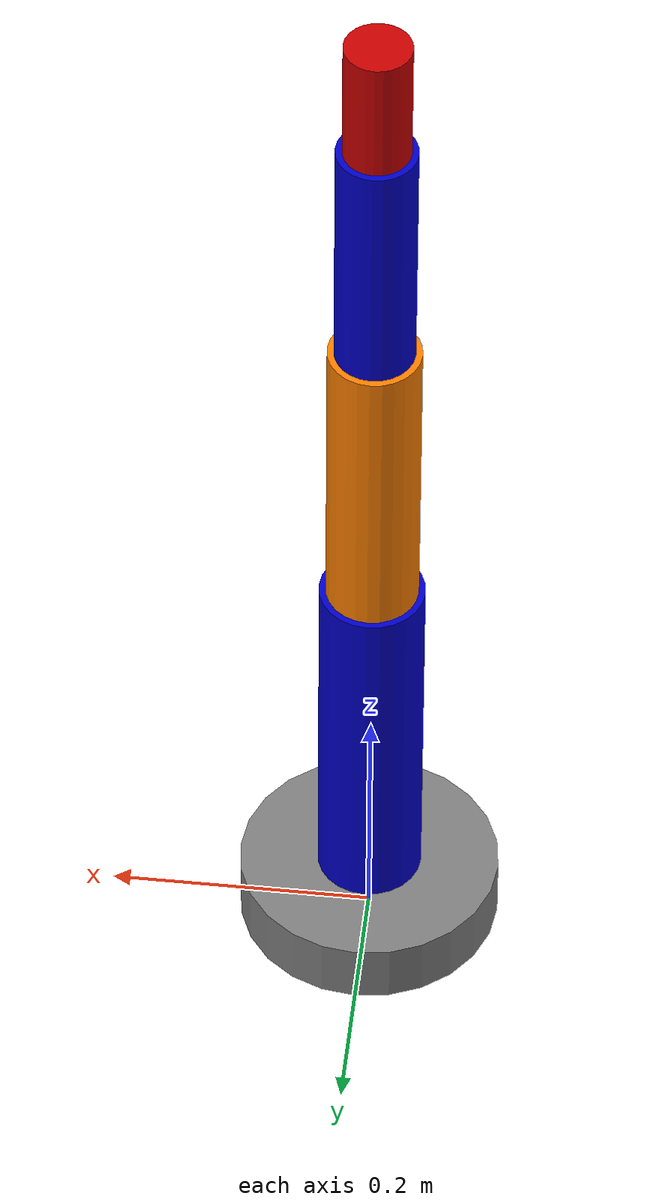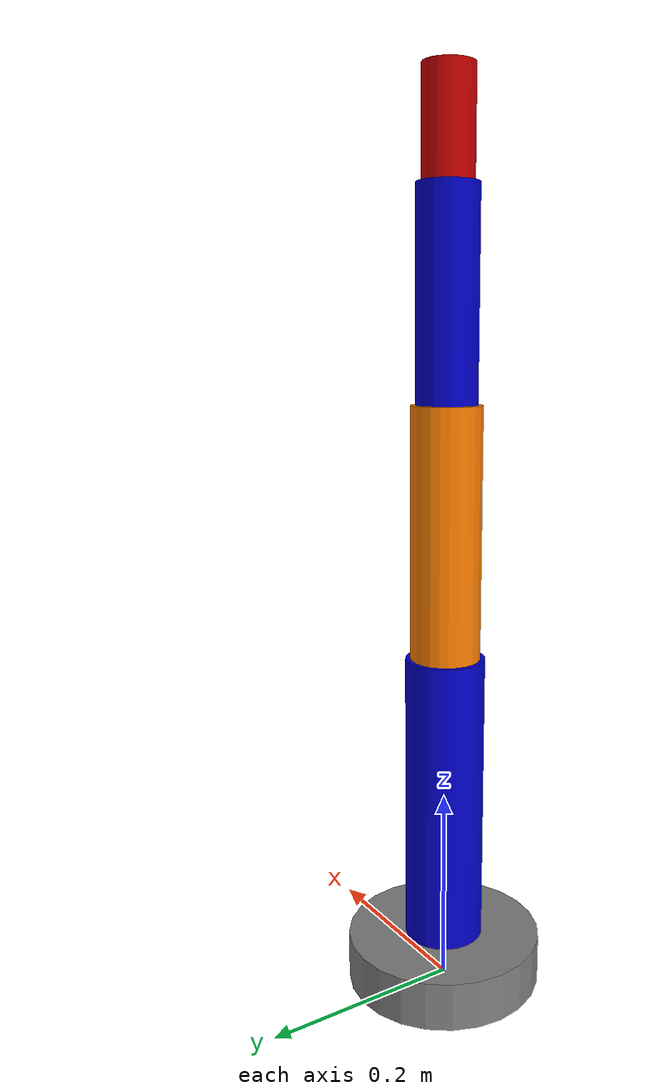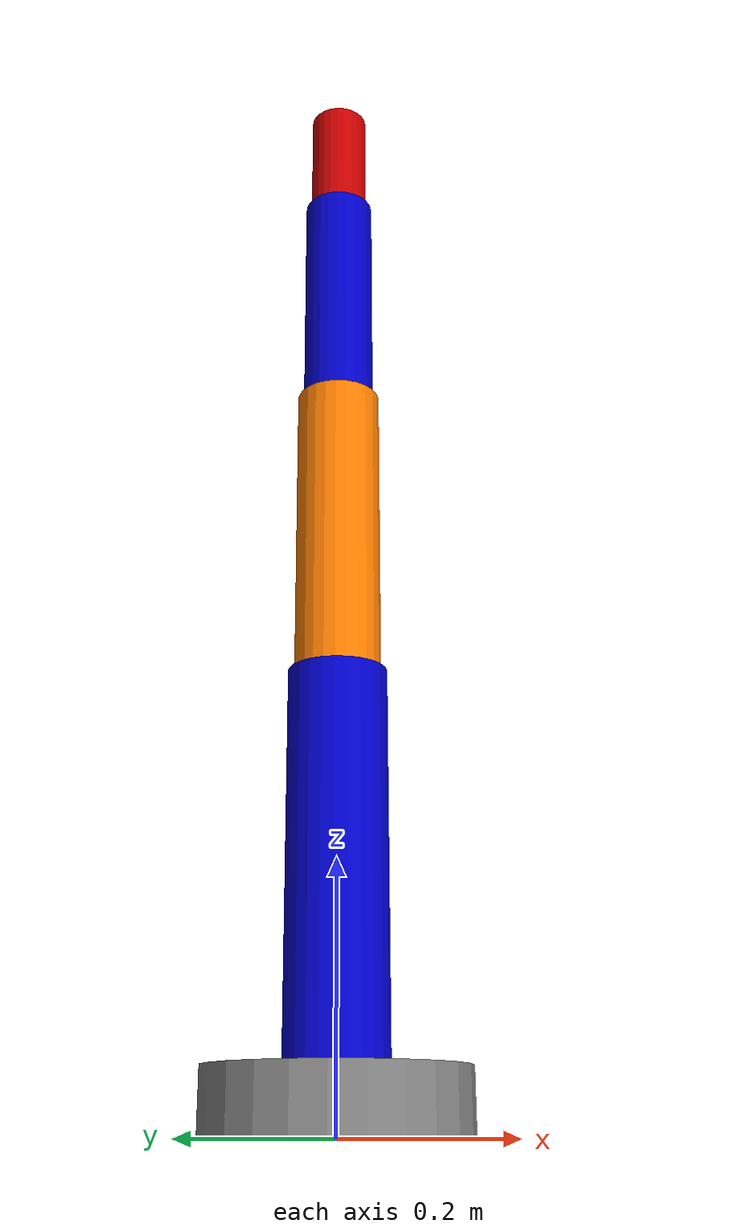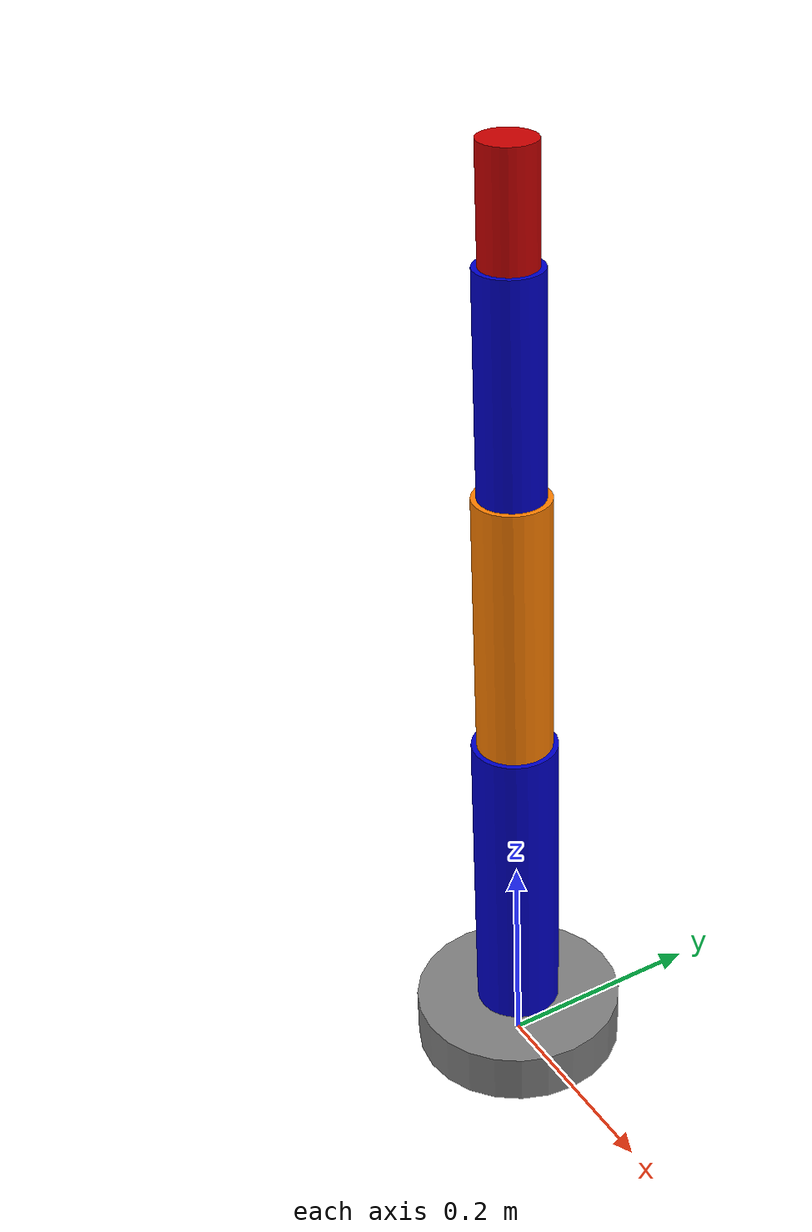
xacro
<?xml version="1.0"?>
<robot xmlns:xacro="http://www.ros.org/wiki/xacro" name="robot_arm">

  <!-- Constants for robot dimensions -->
  <xacro:property name="PI" value="3.1415926535897931"/>

  <!-- Base dimensions -->
  <xacro:property name="base_height" value="0.05"/>
  <xacro:property name="base_radius" value="0.1"/>

  <!-- Link 1 dimensions -->
  <xacro:property name="link1_length" value="0.3"/>
  <xacro:property name="link1_radius" value="0.04"/>

  <!-- Link 2 dimensions -->
  <xacro:property name="link2_length" value="0.25"/>
  <xacro:property name="link2_radius" value="0.035"/>

  <!-- Link 3 dimensions -->
  <xacro:property name="link3_length" value="0.2"/>
  <xacro:property name="link3_radius" value="0.03"/>

  <!-- End effector dimensions -->
  <xacro:property name="ee_length" value="0.1"/>
  <xacro:property name="ee_radius" value="0.025"/>

  <!-- Material colors -->
  <material name="blue">
    <color rgba="0 0 0.8 1"/>
  </material>

  <material name="gray">
    <color rgba="0.5 0.5 0.5 1"/>
  </material>

  <material name="orange">
    <color rgba="1 0.5 0 1"/>
  </material>

  <material name="red">
    <color rgba="0.8 0 0 1"/>
  </material>

  <!-- World link (fixed reference frame) -->
  <link name="world"/>

  <!-- Base link -->
  <link name="base_link">
    <visual>
      <origin xyz="0 0 ${base_height/2}" rpy="0 0 0"/>
      <geometry>
        <cylinder radius="${base_radius}" length="${base_height}"/>
      </geometry>
      <material name="gray"/>
    </visual>
    <collision>
      <origin xyz="0 0 ${base_height/2}" rpy="0 0 0"/>
      <geometry>
        <cylinder radius="${base_radius}" length="${base_height}"/>
      </geometry>
    </collision>
    <inertial>
      <mass value="1.0"/>
      <origin xyz="0 0 ${base_height/2}" rpy="0 0 0"/>
      <inertia ixx="0.01" ixy="0.0" ixz="0.0" iyy="0.01" iyz="0.0" izz="0.01"/>
    </inertial>
  </link>

  <!-- Joint connecting world to base -->
  <joint name="world_to_base" type="fixed">
    <parent link="world"/>
    <child link="base_link"/>
    <origin xyz="0 0 0" rpy="0 0 0"/>
  </joint>

  <!-- Link 1 -->
  <link name="link1">
    <visual>
      <origin xyz="0 0 ${link1_length/2}" rpy="0 0 0"/>
      <geometry>
        <cylinder radius="${link1_radius}" length="${link1_length}"/>
      </geometry>
      <material name="blue"/>
    </visual>
    <collision>
      <origin xyz="0 0 ${link1_length/2}" rpy="0 0 0"/>
      <geometry>
        <cylinder radius="${link1_radius}" length="${link1_length}"/>
      </geometry>
    </collision>
    <inertial>
      <mass value="0.5"/>
      <origin xyz="0 0 ${link1_length/2}" rpy="0 0 0"/>
      <inertia ixx="0.005" ixy="0.0" ixz="0.0" iyy="0.005" iyz="0.0" izz="0.001"/>
    </inertial>
  </link>

  <!-- Joint 1 (Base rotation - revolute around Z axis) -->
  <joint name="joint1" type="revolute">
    <parent link="base_link"/>
    <child link="link1"/>
    <origin xyz="0 0 ${base_height}" rpy="0 0 0"/>
    <axis xyz="0 0 1"/>
    <limit lower="${-PI}" upper="${PI}" effort="10.0" velocity="1.0"/>
  </joint>

  <!-- Link 2 -->
  <link name="link2">
    <visual>
      <origin xyz="0 0 ${link2_length/2}" rpy="0 0 0"/>
      <geometry>
        <cylinder radius="${link2_radius}" length="${link2_length}"/>
      </geometry>
      <material name="orange"/>
    </visual>
    <collision>
      <origin xyz="0 0 ${link2_length/2}" rpy="0 0 0"/>
      <geometry>
        <cylinder radius="${link2_radius}" length="${link2_length}"/>
      </geometry>
    </collision>
    <inertial>
      <mass value="0.4"/>
      <origin xyz="0 0 ${link2_length/2}" rpy="0 0 0"/>
      <inertia ixx="0.004" ixy="0.0" ixz="0.0" iyy="0.004" iyz="0.0" izz="0.001"/>
    </inertial>
  </link>

  <!-- Joint 2 (Shoulder - revolute around Y axis) -->
  <joint name="joint2" type="revolute">
    <parent link="link1"/>
    <child link="link2"/>
    <origin xyz="0 0 ${link1_length}" rpy="0 0 0"/>
    <axis xyz="0 1 0"/>
    <limit lower="${-PI/2}" upper="${PI/2}" effort="10.0" velocity="1.0"/>
  </joint>

  <!-- Link 3 -->
  <link name="link3">
    <visual>
      <origin xyz="0 0 ${link3_length/2}" rpy="0 0 0"/>
      <geometry>
        <cylinder radius="${link3_radius}" length="${link3_length}"/>
      </geometry>
      <material name="blue"/>
    </visual>
    <collision>
      <origin xyz="0 0 ${link3_length/2}" rpy="0 0 0"/>
      <geometry>
        <cylinder radius="${link3_radius}" length="${link3_length}"/>
      </geometry>
    </collision>
    <inertial>
      <mass value="0.3"/>
      <origin xyz="0 0 ${link3_length/2}" rpy="0 0 0"/>
      <inertia ixx="0.003" ixy="0.0" ixz="0.0" iyy="0.003" iyz="0.0" izz="0.0005"/>
    </inertial>
  </link>

  <!-- Joint 3 (Elbow - revolute around Y axis) -->
  <joint name="joint3" type="revolute">
    <parent link="link2"/>
    <child link="link3"/>
    <origin xyz="0 0 ${link2_length}" rpy="0 0 0"/>
    <axis xyz="0 1 0"/>
    <limit lower="${-PI/2}" upper="${PI/2}" effort="10.0" velocity="1.0"/>
  </joint>

  <!-- End effector link -->
  <link name="end_effector">
    <visual>
      <origin xyz="0 0 ${ee_length/2}" rpy="0 0 0"/>
      <geometry>
        <cylinder radius="${ee_radius}" length="${ee_length}"/>
      </geometry>
      <material name="red"/>
    </visual>
    <collision>
      <origin xyz="0 0 ${ee_length/2}" rpy="0 0 0"/>
      <geometry>
        <cylinder radius="${ee_radius}" length="${ee_length}"/>
      </geometry>
    </collision>
    <inertial>
      <mass value="0.2"/>
      <origin xyz="0 0 ${ee_length/2}" rpy="0 0 0"/>
      <inertia ixx="0.001" ixy="0.0" ixz="0.0" iyy="0.001" iyz="0.0" izz="0.0002"/>
    </inertial>
  </link>

  <!-- Joint 4 (Wrist rotation - revolute around Z axis) -->
  <joint name="joint4" type="revolute">
    <parent link="link3"/>
    <child link="end_effector"/>
    <origin xyz="0 0 ${link3_length}" rpy="0 0 0"/>
    <axis xyz="0 0 1"/>
    <limit lower="${-PI}" upper="${PI}" effort="5.0" velocity="1.0"/>
  </joint>

</robot>
